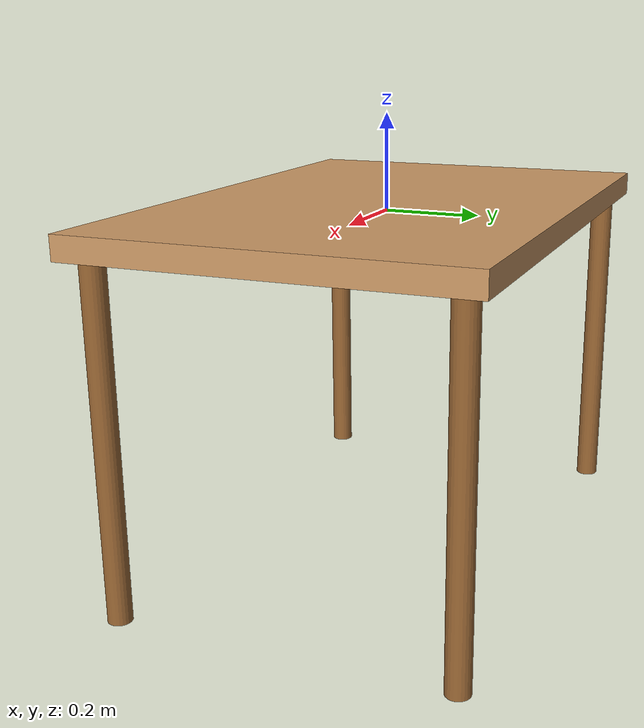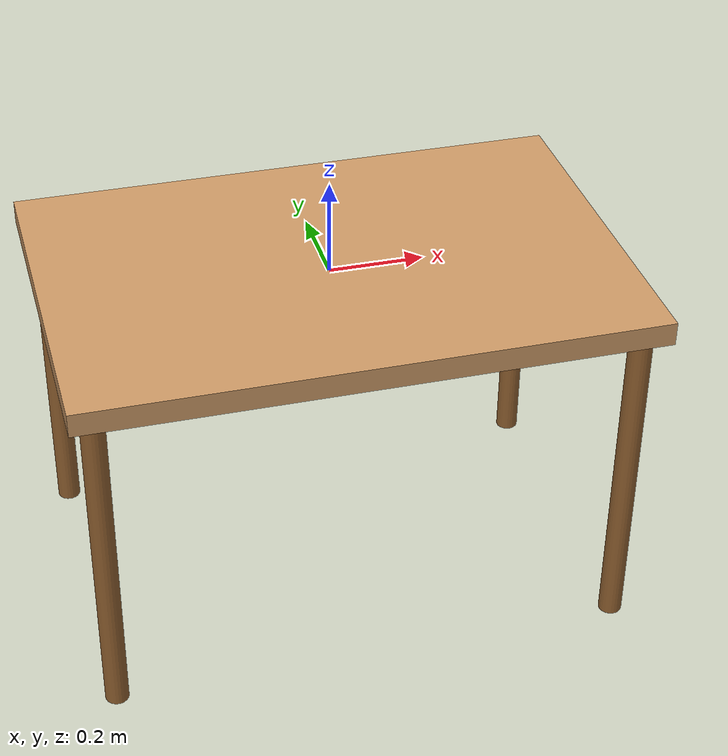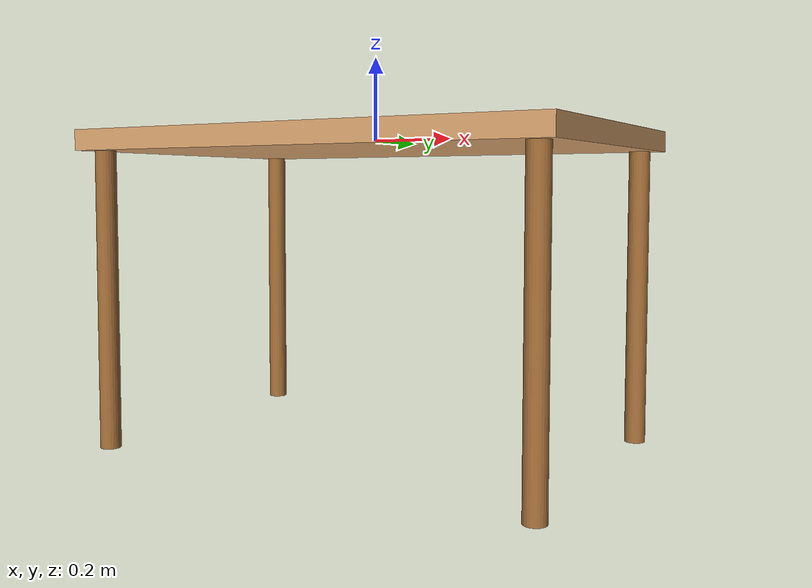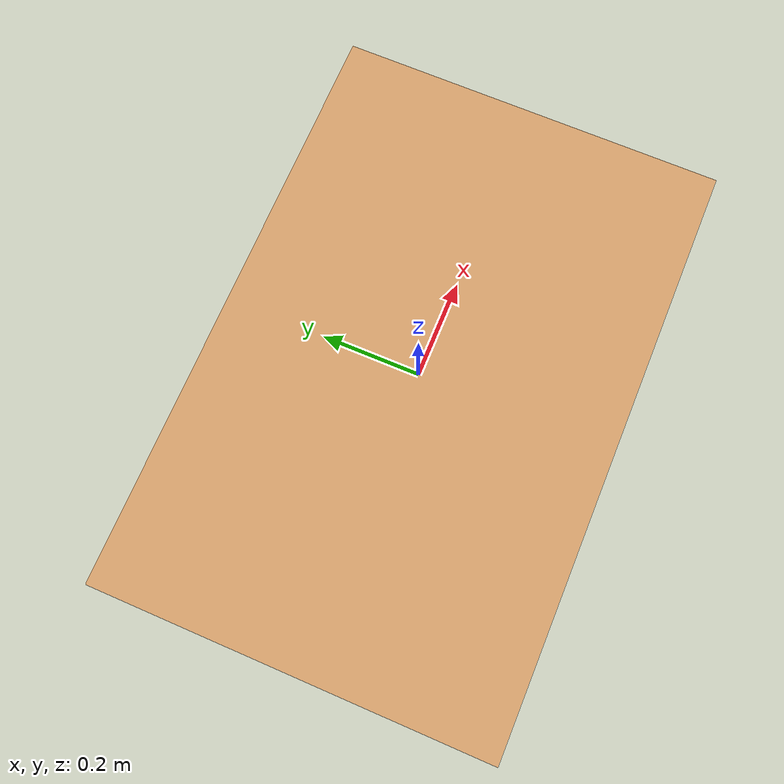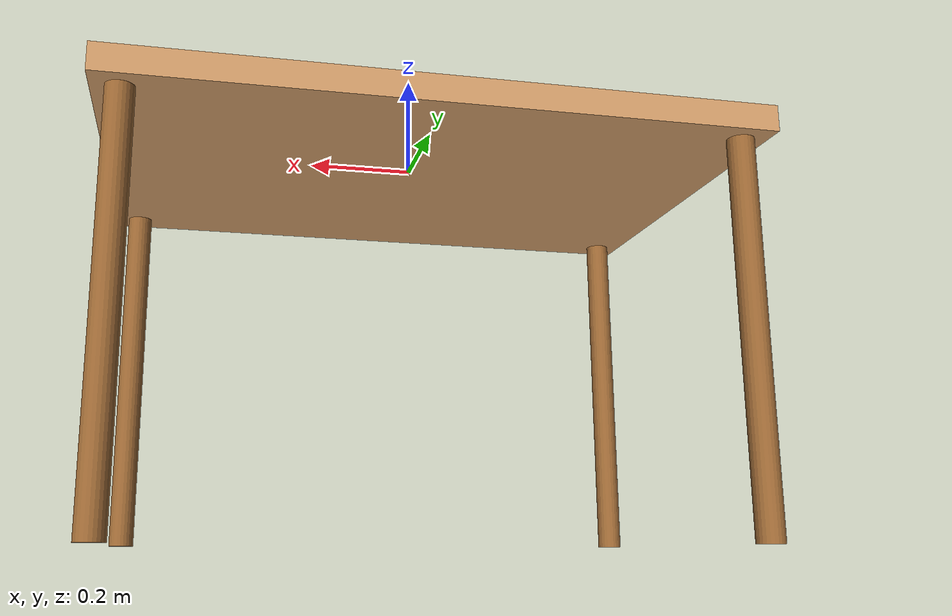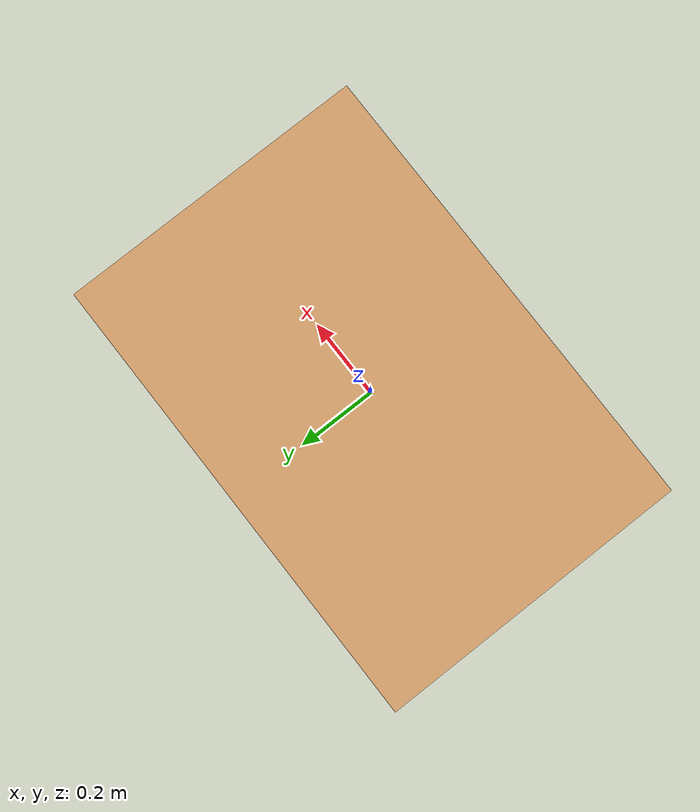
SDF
<?xml version="1.0"?>
<sdf version="1.7">
  <model name="table">
    <static>true</static>
    <link name="table_link">
      <visual name="table_visual">
        <geometry>
          <box>
            <size>1.2 0.8 0.05</size>
          </box>
        </geometry>
        <material>
          <diffuse>0.8 0.6 0.4 1.0</diffuse>
        </material>
      </visual>
      <collision name="table_collision">
        <geometry>
          <box>
            <size>1.2 0.8 0.05</size>
          </box>
        </geometry>
      </collision>
      <inertial>
        <mass>10.0</mass>
        <inertia>
          <ixx>0.83</ixx>
          <iyy>1.83</iyy>
          <izz>2.5</izz>
          <ixy>0</ixy>
          <ixz>0</ixz>
          <iyz>0</iyz>
        </inertia>
      </inertial>
    </link>
    <!-- 添加桌腿 -->
    <link name="leg1">
      <pose>0.55 0.35 -0.375 0 0 0</pose>
      <visual name="leg1_visual">
        <geometry>
          <cylinder>
            <radius>0.025</radius>
            <length>0.75</length>
          </cylinder>
        </geometry>
        <material>
          <diffuse>0.6 0.4 0.2 1.0</diffuse>
        </material>
      </visual>
      <collision name="leg1_collision">
        <geometry>
          <cylinder>
            <radius>0.025</radius>
            <length>0.75</length>
          </cylinder>
        </geometry>
      </collision>
    </link>
    <link name="leg2">
      <pose>0.55 -0.35 -0.375 0 0 0</pose>
      <visual name="leg2_visual">
        <geometry>
          <cylinder>
            <radius>0.025</radius>
            <length>0.75</length>
          </cylinder>
        </geometry>
        <material>
          <diffuse>0.6 0.4 0.2 1.0</diffuse>
        </material>
      </visual>
      <collision name="leg2_collision">
        <geometry>
          <cylinder>
            <radius>0.025</radius>
            <length>0.75</length>
          </cylinder>
        </geometry>
      </collision>
    </link>
    <link name="leg3">
      <pose>-0.55 0.35 -0.375 0 0 0</pose>
      <visual name="leg3_visual">
        <geometry>
          <cylinder>
            <radius>0.025</radius>
            <length>0.75</length>
          </cylinder>
        </geometry>
        <material>
          <diffuse>0.6 0.4 0.2 1.0</diffuse>
        </material>
      </visual>
      <collision name="leg3_collision">
        <geometry>
          <cylinder>
            <radius>0.025</radius>
            <length>0.75</length>
          </cylinder>
        </geometry>
      </collision>
    </link>
    <link name="leg4">
      <pose>-0.55 -0.35 -0.375 0 0 0</pose>
      <visual name="leg4_visual">
        <geometry>
          <cylinder>
            <radius>0.025</radius>
            <length>0.75</length>
          </cylinder>
        </geometry>
        <material>
          <diffuse>0.6 0.4 0.2 1.0</diffuse>
        </material>
      </visual>
      <collision name="leg4_collision">
        <geometry>
          <cylinder>
            <radius>0.025</radius>
            <length>0.75</length>
          </cylinder>
        </geometry>
      </collision>
    </link>
    <!-- 将桌腿连接到桌面 -->
    <joint name="leg1_joint" type="fixed">
      <parent>table_link</parent>
      <child>leg1</child>
    </joint>
    <joint name="leg2_joint" type="fixed">
      <parent>table_link</parent>
      <child>leg2</child>
    </joint>
    <joint name="leg3_joint" type="fixed">
      <parent>table_link</parent>
      <child>leg3</child>
    </joint>
    <joint name="leg4_joint" type="fixed">
      <parent>table_link</parent>
      <child>leg4</child>
    </joint>
  </model>
</sdf>
